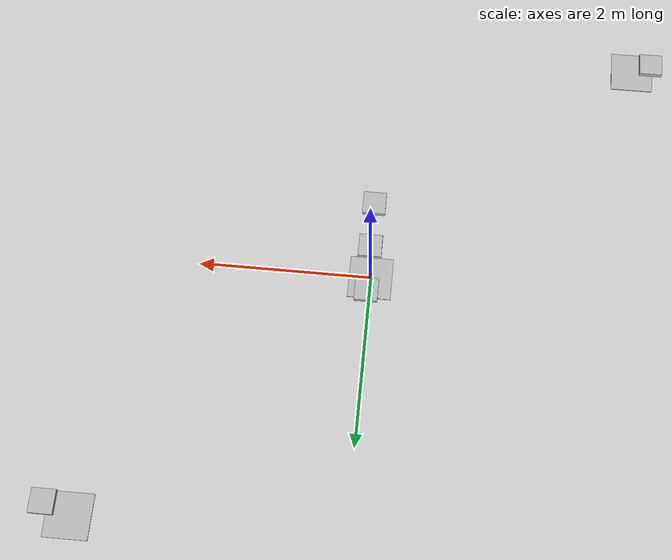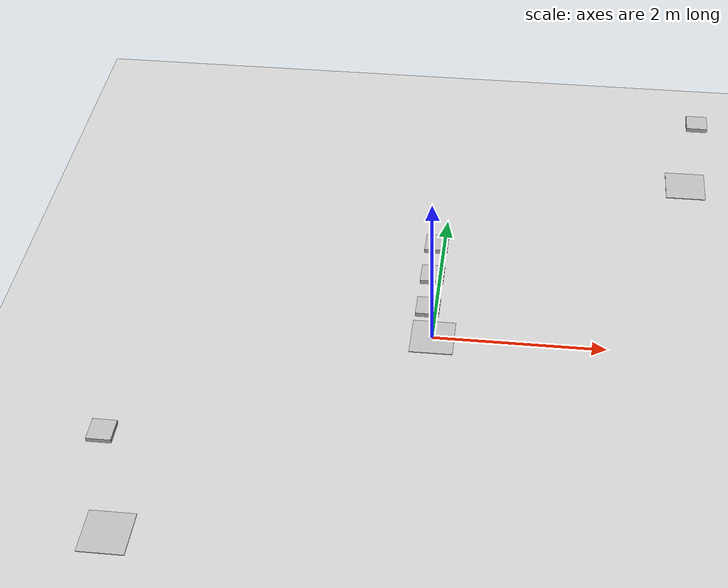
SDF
<?xml version="1.0" ?>
<sdf version="1.6">
  <world name="default">
    <physics name="fast" type="ignored">
      <real_time_factor>0</real_time_factor>
    </physics>

    <plugin
      filename="gz-sim-physics-system"
      name="gz::sim::systems::Physics">
    </plugin>
    <plugin
      filename="gz-sim-scene-broadcaster-system"
      name="gz::sim::systems::SceneBroadcaster">
    </plugin>
    <model name="ground_plane">
      <static>true</static>
      <link name="link">
        <collision name="collision">
          <geometry>
            <plane>
              <normal>0 0 1</normal>
              <size>100 100</size>
            </plane>
          </geometry>
        </collision>
        <visual name="visual">
          <geometry>
            <plane>
              <normal>0 0 1</normal>
              <size>100 100</size>
            </plane>
          </geometry>
          <material>
            <ambient>0.8 0.8 0.8 1</ambient>
            <diffuse>0.8 0.8 0.8 1</diffuse>
            <specular>0.8 0.8 0.8 1</specular>
          </material>
        </visual>
      </link>
    </model>
    <model name="joint_controller_test">
      <pose>0 0 0.005 0 0 0</pose>
      <link name="base_link">
        <pose>0.0 0.0 0.0 0 0 0</pose>
        <inertial>
          <inertia>
            <ixx>2.501</ixx>
            <ixy>0</ixy>
            <ixz>0</ixz>
            <iyy>2.501</iyy>
            <iyz>0</iyz>
            <izz>5</izz>
          </inertia>
          <mass>120.0</mass>
        </inertial>
        <visual name="base_visual">
          <pose>0.0 0.0 0.0 0 0 0</pose>
          <geometry>
            <box>
              <size>0.5 0.5 0.01</size>
            </box>
          </geometry>
        </visual>
        <collision name="base_collision">
          <pose>0.0 0.0 0.0 0 0 0</pose>
          <geometry>
            <box>
              <size>0.5 0.5 0.01</size>
            </box>
          </geometry>
        </collision>
      </link>
      <link name="rotor">
        <pose>0.0 0.0 1.0 0.0 0 0</pose>
        <inertial>
          <pose>0.0 0.0 0.0 0 0 0</pose>
          <inertia>
            <ixx>0.032</ixx>
            <ixy>0</ixy>
            <ixz>0</ixz>
            <iyy>0.032</iyy>
            <iyz>0</iyz>
            <izz>0.00012</izz>
          </inertia>
          <mass>0.6</mass>
        </inertial>
        <visual name="visual">
          <geometry>
            <box>
              <size>0.25 0.25 0.05</size>
            </box>
          </geometry>
        </visual>
        <collision name="collision">
          <geometry>
            <box>
              <size>0.25 0.25 0.05</size>
            </box>
          </geometry>
        </collision>
      </link>

      <joint name="j1" type="revolute">
        <pose>0 0 -0.5 0 0 0</pose>
        <parent>base_link</parent>
        <child>rotor</child>
        <axis>
          <xyz>0 0 1</xyz>
        </axis>
      </joint>
      <plugin
        filename="gz-sim-joint-controller-system"
        name="gz::sim::systems::JointController">
        <joint_name>j1</joint_name>
        <initial_velocity>5.0</initial_velocity>
      </plugin>
    </model>

    <model name="joint_controller_test1">
      <pose>0 0 0.005 0 0 0</pose>
      <link name="base_link">
        <pose>0.0 0.0 0.0 0 0 0</pose>
        <inertial>
          <inertia>
            <ixx>2.501</ixx>
            <ixy>0</ixy>
            <ixz>0</ixz>
            <iyy>2.501</iyy>
            <iyz>0</iyz>
            <izz>5</izz>
          </inertia>
          <mass>120.0</mass>
        </inertial>
        <visual name="base_visual">
          <pose>0.0 0.0 0.0 0 0 0</pose>
          <geometry>
            <box>
              <size>0.5 0.5 0.01</size>
            </box>
          </geometry>
        </visual>
        <collision name="base_collision">
          <pose>0.0 0.0 0.0 0 0 0</pose>
          <geometry>
            <box>
              <size>0.5 0.5 0.01</size>
            </box>
          </geometry>
        </collision>
      </link>
      <link name="rotor1">
        <pose>0.0 0.5 1.0 0.0 0 0</pose>
        <inertial>
          <pose>0.0 0.0 0.0 0 0 0</pose>
          <inertia>
            <ixx>0.032</ixx>
            <ixy>0</ixy>
            <ixz>0</ixz>
            <iyy>0.032</iyy>
            <iyz>0</iyz>
            <izz>0.00012</izz>
          </inertia>
          <mass>0.6</mass>
        </inertial>
        <visual name="visual">
          <geometry>
            <box>
              <size>0.25 0.25 0.05</size>
            </box>
          </geometry>
        </visual>
        <collision name="collision">
          <geometry>
            <box>
              <size>0.25 0.25 0.05</size>
            </box>
          </geometry>
        </collision>
      </link>
      <link name="rotor2">
        <pose>0.0 -0.5 1.0 0.0 0 0</pose>
        <inertial>
          <pose>0.0 0.0 0.0 0 0 0</pose>
          <inertia>
            <ixx>0.032</ixx>
            <ixy>0</ixy>
            <ixz>0</ixz>
            <iyy>0.032</iyy>
            <iyz>0</iyz>
            <izz>0.00012</izz>
          </inertia>
          <mass>0.6</mass>
        </inertial>
        <visual name="visual">
          <geometry>
            <box>
              <size>0.25 0.25 0.05</size>
            </box>
          </geometry>
        </visual>
        <collision name="collision">
          <geometry>
            <box>
              <size>0.25 0.25 0.05</size>
            </box>
          </geometry>
        </collision>
      </link>

      <joint name="j1" type="revolute">
        <pose>0 0 -0.5 0 0 0</pose>
        <parent>base_link</parent>
        <child>rotor1</child>
        <axis>
          <xyz>0 0 1</xyz>
        </axis>
      </joint>
      <joint name="j2" type="revolute">
        <pose>0 0 -0.5 0 0 0</pose>
        <parent>base_link</parent>
        <child>rotor2</child>
        <axis>
          <xyz>0 0 1</xyz>
        </axis>
      </joint>
      <plugin
        filename="gz-sim-joint-controller-system"
        name="gz::sim::systems::JointController">
        <initial_velocity>5.0</initial_velocity>
        <sub_topic>joints</sub_topic>
        <joint_name>j1</joint_name>
        <joint_name>j2</joint_name>
      </plugin>
    </model>

    <model name="joint_controller_test_2">
      <pose>3 3 0.005 0 0 0</pose>
      <link name="base_link">
        <pose>0.0 0.0 0.0 0 0 0</pose>
        <inertial>
          <inertia>
            <ixx>2.501</ixx>
            <ixy>0</ixy>
            <ixz>0</ixz>
            <iyy>2.501</iyy>
            <iyz>0</iyz>
            <izz>5</izz>
          </inertia>
          <mass>120.0</mass>
        </inertial>
        <visual name="base_visual">
          <pose>0.0 0.0 0.0 0 0 0</pose>
          <geometry>
            <box>
              <size>0.5 0.5 0.01</size>
            </box>
          </geometry>
        </visual>
        <collision name="base_collision">
          <pose>0.0 0.0 0.0 0 0 0</pose>
          <geometry>
            <box>
              <size>0.5 0.5 0.01</size>
            </box>
          </geometry>
        </collision>
      </link>
      <link name="rotor3">
        <pose>0.0 0.0 1.0 0.0 0 0</pose>
        <inertial>
          <pose>0.0 0.0 0.0 0 0 0</pose>
          <inertia>
            <ixx>0.032</ixx>
            <ixy>0</ixy>
            <ixz>0</ixz>
            <iyy>0.032</iyy>
            <iyz>0</iyz>
            <izz>0.00012</izz>
          </inertia>
          <mass>0.6</mass>
        </inertial>
        <visual name="visual">
          <geometry>
            <box>
              <size>0.25 0.25 0.05</size>
            </box>
          </geometry>
        </visual>
        <collision name="collision">
          <geometry>
            <box>
              <size>0.25 0.25 0.05</size>
            </box>
          </geometry>
        </collision>
      </link>

      <joint name="j1" type="revolute">
        <pose>0 0 -0.5 0 0 0</pose>
        <parent>base_link</parent>
        <child>rotor3</child>
        <axis>
          <xyz>0 0 1</xyz>
        </axis>
      </joint>
      <plugin
        filename="gz-sim-joint-controller-system"
        name="gz::sim::systems::JointController">
        <joint_name>j1</joint_name>
        <use_force_commands>true</use_force_commands>
        <p_gain>0.2</p_gain>
        <i_gain>0.01</i_gain>
      </plugin>
    </model>

    <model name="joint_controller_test3">
      <pose>-3 -3 0.005 0 0 0</pose>
      <link name="base_link">
        <pose>0.0 0.0 0.0 0 0 0</pose>
        <inertial>
          <inertia>
            <ixx>2.501</ixx>
            <ixy>0</ixy>
            <ixz>0</ixz>
            <iyy>2.501</iyy>
            <iyz>0</iyz>
            <izz>5</izz>
          </inertia>
          <mass>120.0</mass>
        </inertial>
        <visual name="base_visual">
          <pose>0.0 0.0 0.0 0 0 0</pose>
          <geometry>
            <box>
              <size>0.5 0.5 0.01</size>
            </box>
          </geometry>
        </visual>
        <collision name="base_collision">
          <pose>0.0 0.0 0.0 0 0 0</pose>
          <geometry>
            <box>
              <size>0.5 0.5 0.01</size>
            </box>
          </geometry>
        </collision>
      </link>
      <link name="rotor4">
        <pose>0.0 0.5 1.0 0.0 0 0</pose>
        <inertial>
          <pose>0.0 0.0 0.0 0 0 0</pose>
          <inertia>
            <ixx>0.032</ixx>
            <ixy>0</ixy>
            <ixz>0</ixz>
            <iyy>0.032</iyy>
            <iyz>0</iyz>
            <izz>0.00012</izz>
          </inertia>
          <mass>0.6</mass>
        </inertial>
        <visual name="visual">
          <geometry>
            <box>
              <size>0.25 0.25 0.05</size>
            </box>
          </geometry>
        </visual>
        <collision name="collision">
          <geometry>
            <box>
              <size>0.25 0.25 0.05</size>
            </box>
          </geometry>
        </collision>
      </link>

      <joint name="j4" type="revolute">
        <pose>0 0 -0.5 0 0 0</pose>
        <parent>base_link</parent>
        <child>rotor4</child>
        <axis>
          <xyz>0 0 1</xyz>
        </axis>
      </joint>
      <plugin
        filename="gz-sim-joint-controller-system"
        name="gz::sim::systems::JointController">
        <joint_name>j4</joint_name>
        <use_actuator_msg>true</use_actuator_msg>
        <actuator_number>0</actuator_number>
      </plugin>
    </model>
  </world>
</sdf>
